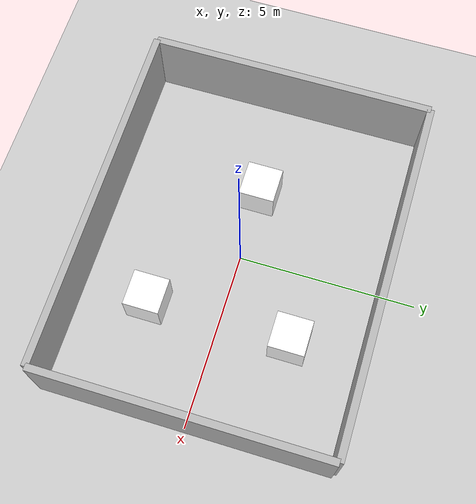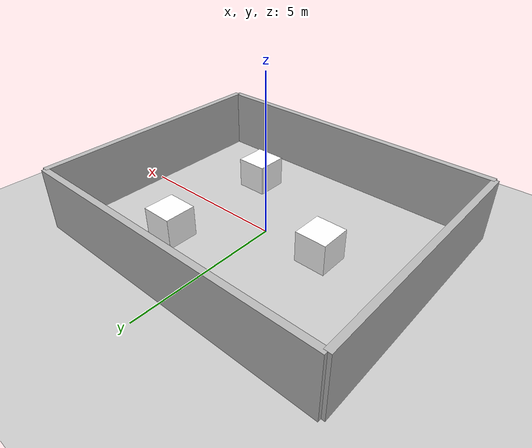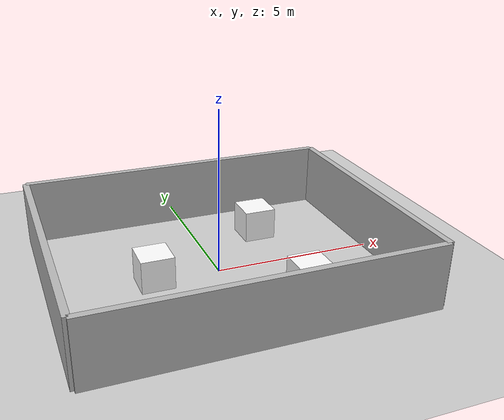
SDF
<?xml version="1.0" ?>
<sdf version="1.8">
  <world name="closed_room_world">
    <physics name="1ms" type="ignored">
      <max_step_size>0.001</max_step_size>
      <real_time_factor>1.0</real_time_factor>
    </physics>

    <plugin filename="ignition-gazebo-physics-system" name="ignition::gazebo::systems::Physics"/>
    <plugin filename="ignition-gazebo-user-commands-system" name="ignition::gazebo::systems::UserCommands"/>
    <plugin filename="ignition-gazebo-scene-broadcaster-system" name="ignition::gazebo::systems::SceneBroadcaster"/>
    <plugin filename="gz-sim-sensors-system" name="gz::sim::systems::Sensors">
        <render_engine>ogre2</render_engine>
    </plugin>

    <light name="sun" type="directional">
      <pose>0 0 10 0 0 0</pose>
      <diffuse>0.8 0.8 0.8 1</diffuse>
      <specular>0.2 0.2 0.2 1</specular>
    </light>

    <model name="ground_plane">
      <static>true</static>
      <link name="link">
        <collision name="collision">
          <geometry><plane><normal>0 0 1</normal></plane></geometry>
        </collision>
        <visual name="visual">
          <geometry><plane><normal>0 0 1</normal></plane></geometry>
          <material>
            <ambient>0.8 0.8 0.8 1</ambient>
            <diffuse>0.8 0.8 0.8 1</diffuse>
          </material>
        </visual>
      </link>
    </model>

    <model name="wall_north">
      <static>true</static>
      <pose>5 0 1 0 0 0</pose>
      <link name="link"><collision name="c"><geometry><box><size>0.2 8 2</size></box></geometry></collision>
      <visual name="v"><geometry><box><size>0.2 8 2</size></box></geometry></visual></link>
    </model>

    <model name="wall_south">
      <static>true</static>
      <pose>-5 0 1 0 0 0</pose>
      <link name="link"><collision name="c"><geometry><box><size>0.2 8 2</size></box></geometry></collision>
      <visual name="v"><geometry><box><size>0.2 8 2</size></box></geometry></visual></link>
    </model>

    <model name="wall_east">
      <static>true</static>
      <pose>0 4 1 0 0 1.5708</pose>
      <link name="link"><collision name="c"><geometry><box><size>0.2 10 2</size></box></geometry></collision>
      <visual name="v"><geometry><box><size>0.2 10 2</size></box></geometry></visual></link>
    </model>

    <model name="wall_west">
      <static>true</static>
      <pose>0 -4 1 0 0 1.5708</pose>
      <link name="link"><collision name="c"><geometry><box><size>0.2 10 2</size></box></geometry></collision>
      <visual name="v"><geometry><box><size>0.2 10 2</size></box></geometry></visual></link>
    </model>

    <model name="block_1">
      <static>true</static>
      <pose>2 2 0.5 0 0 0</pose>
      <link name="link">
        <collision name="c"><geometry><box><size>1 1 1</size></box></geometry></collision>
        <visual name="v"><geometry><box><size>1 1 1</size></box></geometry>
        <material><ambient>1 1 1 1</ambient><diffuse>1 1 1 1</diffuse></material></visual>
      </link>
    </model>

    <model name="block_2">
      <static>true</static>
      <pose>2 -2 0.5 0 0 0</pose>
      <link name="link">
        <collision name="c"><geometry><box><size>1 1 1</size></box></geometry></collision>
        <visual name="v"><geometry><box><size>1 1 1</size></box></geometry>
        <material><ambient>1 1 1 1</ambient><diffuse>1 1 1 1</diffuse></material></visual>
      </link>
    </model>

    <model name="block_3">
      <static>true</static>
      <pose>-2 0 0.5 0 0 0</pose>
      <link name="link">
        <collision name="c"><geometry><box><size>1 1 1</size></box></geometry></collision>
        <visual name="v"><geometry><box><size>1 1 1</size></box></geometry>
        <material><ambient>1 1 1 1</ambient><diffuse>1 1 1 1</diffuse></material></visual>
      </link>
    </model>

  </world>
</sdf>
